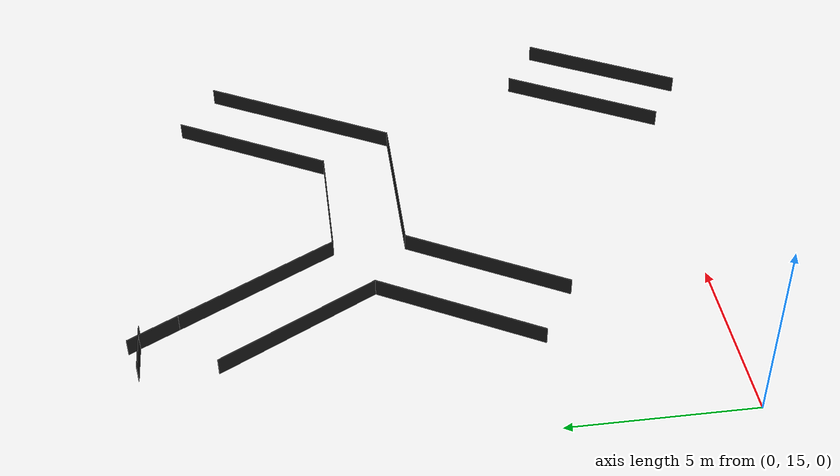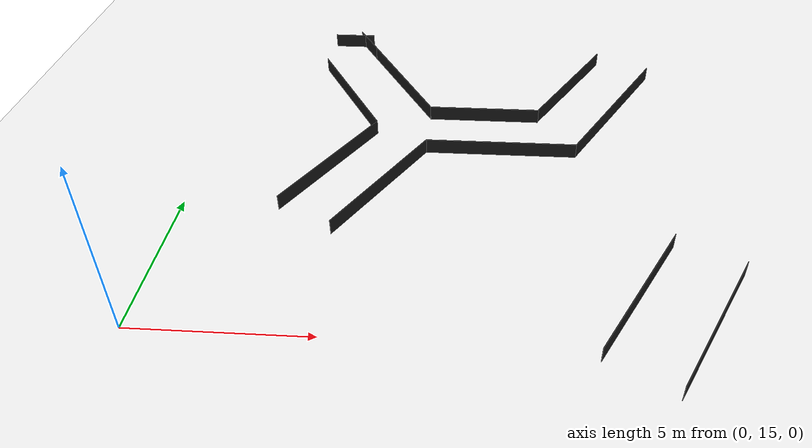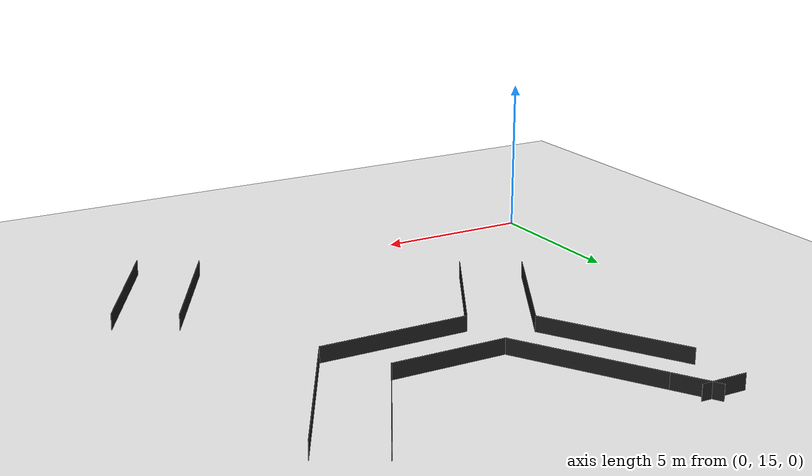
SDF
<sdf version="1.6">
 <world name="default">
  <model name="ground_plane">
   <static>1</static>
   <link name="link">
    <collision name="collision">
     <geometry><plane><normal>0 0 1</normal><size>100 100</size></plane></geometry>
     <surface><friction><ode><mu>100</mu><mu2>50</mu2></ode></friction></surface>
    </collision>
    <visual name="visual">
     <cast_shadows>0</cast_shadows>
     <geometry><plane><normal>0 0 1</normal><size>100 100</size></plane></geometry>
     <material>
      <script><uri>file://media/materials/scripts/gazebo.material</uri><name>Gazebo/White</name></script>
     </material>
    </visual>
   </link>
  </model>
  <model name="T_maze_0">
   <link name="link_clone">
    <inertial>
     <mass>1</mass>
     <inertia>
      <ixx>0.166667</ixx>
      <ixy>0</ixy>
      <ixz>0</ixz>
      <iyy>0.166667</iyy>
      <iyz>0</iyz>
      <izz>0.166667</izz>
     </inertia>
    </inertial>
    <pose>12.7749 3.79089 -0 5e-06 -0 2.0944</pose>
    <visual name="visual_2">
     <geometry><box><size>0.015 4.8453 0.5</size></box></geometry>
     <material>
      <script><name>Gazebo/FlatBlack</name><uri>file://media/materials/scripts/gazebo.material</uri></script>
      <shader type="pixel"><normal_map>__default__</normal_map></shader>
      <ambient>0.1 0.1 0.1 1</ambient>
      <diffuse>0.1 0.1 0.1 1</diffuse>
      <specular>0.01 0.01 0.01 1</specular>
      <emissive>0 0 0 1</emissive>
     </material>
     <pose>2 0 0 0 -0 0</pose>
    </visual>
    <visual name="visual">
     <geometry><box><size>0.015 4.8453 0.5</size></box></geometry>
     <material>
      <script><name>Gazebo/FlatBlack</name><uri>file://media/materials/scripts/gazebo.material</uri></script>
      <shader type="pixel"><normal_map>__default__</normal_map></shader>
      <ambient>0.1 0.1 0.1 1</ambient>
      <diffuse>0.1 0.1 0.1 1</diffuse>
      <specular>0.01 0.01 0.01 1</specular>
      <emissive>0 0 0 1</emissive>
     </material>
    </visual>
    <collision name="collision">
     <geometry><box><size>0.015 4.8453 0.5</size></box></geometry>
     <surface>
      <friction>
       <ode><mu>1</mu><mu2>1</mu2><fdir1>0 0 0</fdir1><slip1>0</slip1><slip2>0</slip2></ode>
       <torsional>
        <coefficient>1</coefficient>
        <patch_radius>0</patch_radius>
        <surface_radius>0</surface_radius>
        <use_patch_radius>1</use_patch_radius>
        <ode><slip>0</slip></ode>
       </torsional>
      </friction>
      <bounce><restitution_coefficient>0</restitution_coefficient><threshold>1e+06</threshold></bounce>
      <contact>
       <collide_without_contact>0</collide_without_contact>
       <collide_without_contact_bitmask>1</collide_without_contact_bitmask>
       <collide_bitmask>1</collide_bitmask>
       <ode>
        <soft_cfm>0</soft_cfm>
        <soft_erp>0.2</soft_erp>
        <kp>1e+13</kp>
        <kd>1</kd>
        <max_vel>0.01</max_vel>
        <min_depth>0</min_depth>
       </ode>
       <bullet>
        <split_impulse>1</split_impulse>
        <split_impulse_penetration_threshold>-0.01</split_impulse_penetration_threshold>
        <soft_cfm>0</soft_cfm>
        <soft_erp>0.2</soft_erp>
        <kp>1e+13</kp>
        <kd>1</kd>
       </bullet>
      </contact>
     </surface>
    </collision>
    <collision name="collision_1">
     <pose>2 0 0 0 -0 0</pose>
     <geometry><box><size>0.015 4.8453 0.5</size></box></geometry>
     <surface>
      <friction>
       <ode><mu>1</mu><mu2>1</mu2><fdir1>0 0 0</fdir1><slip1>0</slip1><slip2>0</slip2></ode>
       <torsional>
        <coefficient>1</coefficient>
        <patch_radius>0</patch_radius>
        <surface_radius>0</surface_radius>
        <use_patch_radius>1</use_patch_radius>
        <ode><slip>0</slip></ode>
       </torsional>
      </friction>
      <bounce><restitution_coefficient>0</restitution_coefficient><threshold>1e+06</threshold></bounce>
      <contact>
       <collide_without_contact>0</collide_without_contact>
       <collide_without_contact_bitmask>1</collide_without_contact_bitmask>
       <collide_bitmask>1</collide_bitmask>
       <ode>
        <soft_cfm>0</soft_cfm>
        <soft_erp>0.2</soft_erp>
        <kp>1e+13</kp>
        <kd>1</kd>
        <max_vel>0.01</max_vel>
        <min_depth>0</min_depth>
       </ode>
       <bullet>
        <split_impulse>1</split_impulse>
        <split_impulse_penetration_threshold>-0.01</split_impulse_penetration_threshold>
        <soft_cfm>0</soft_cfm>
        <soft_erp>0.2</soft_erp>
        <kp>1e+13</kp>
        <kd>1</kd>
       </bullet>
      </contact>
     </surface>
    </collision>
   </link>
   <link name="link_clone_0_clone_clone_1_clone">
    <inertial>
     <mass>1</mass>
     <inertia>
      <ixx>0.166667</ixx>
      <ixy>0</ixy>
      <ixz>0</ixz>
      <iyy>0.166667</iyy>
      <iyz>0</iyz>
      <izz>0.166667</izz>
     </inertia>
    </inertial>
    <pose>19.0569 0.16687 -6e-06 5e-06 -0 0</pose>
    <visual name="visual_2">
     <geometry><box><size>0.015 3.7053 0.5</size></box></geometry>
     <material>
      <script><name>Gazebo/FlatBlack</name><uri>file://media/materials/scripts/gazebo.material</uri></script>
      <shader type="pixel"><normal_map>__default__</normal_map></shader>
      <ambient>0.1 0.1 0.1 1</ambient>
      <diffuse>0.1 0.1 0.1 1</diffuse>
      <specular>0.01 0.01 0.01 1</specular>
      <emissive>0 0 0 1</emissive>
     </material>
     <pose>2 -0.57 0 0 -0 0</pose>
    </visual>
    <visual name="visual">
     <geometry><box><size>0.015 4.8453 0.5</size></box></geometry>
     <material>
      <script><name>Gazebo/FlatBlack</name><uri>file://media/materials/scripts/gazebo.material</uri></script>
      <shader type="pixel"><normal_map>__default__</normal_map></shader>
      <ambient>0.1 0.1 0.1 1</ambient>
      <diffuse>0.1 0.1 0.1 1</diffuse>
      <specular>0.01 0.01 0.01 1</specular>
      <emissive>0 0 0 1</emissive>
     </material>
    </visual>
    <collision name="collision_1">
     <pose>2 -0.57 0 0 -0 0</pose>
     <geometry><box><size>0.015 3.7053 0.5</size></box></geometry>
     <surface>
      <friction>
       <ode><mu>1</mu><mu2>1</mu2><fdir1>0 0 0</fdir1><slip1>0</slip1><slip2>0</slip2></ode>
       <torsional>
        <coefficient>1</coefficient>
        <patch_radius>0</patch_radius>
        <surface_radius>0</surface_radius>
        <use_patch_radius>1</use_patch_radius>
        <ode><slip>0</slip></ode>
       </torsional>
      </friction>
      <bounce><restitution_coefficient>0</restitution_coefficient><threshold>1e+06</threshold></bounce>
      <contact>
       <collide_without_contact>0</collide_without_contact>
       <collide_without_contact_bitmask>1</collide_without_contact_bitmask>
       <collide_bitmask>1</collide_bitmask>
       <ode>
        <soft_cfm>0</soft_cfm>
        <soft_erp>0.2</soft_erp>
        <kp>1e+13</kp>
        <kd>1</kd>
        <max_vel>0.01</max_vel>
        <min_depth>0</min_depth>
       </ode>
       <bullet>
        <split_impulse>1</split_impulse>
        <split_impulse_penetration_threshold>-0.01</split_impulse_penetration_threshold>
        <soft_cfm>0</soft_cfm>
        <soft_erp>0.2</soft_erp>
        <kp>1e+13</kp>
        <kd>1</kd>
       </bullet>
      </contact>
     </surface>
    </collision>
    <collision name="collision">
     <geometry><box><size>0.015 4.8453 0.5</size></box></geometry>
     <surface>
      <friction>
       <ode><mu>1</mu><mu2>1</mu2><fdir1>0 0 0</fdir1><slip1>0</slip1><slip2>0</slip2></ode>
       <torsional>
        <coefficient>1</coefficient>
        <patch_radius>0</patch_radius>
        <surface_radius>0</surface_radius>
        <use_patch_radius>1</use_patch_radius>
        <ode><slip>0</slip></ode>
       </torsional>
      </friction>
      <bounce><restitution_coefficient>0</restitution_coefficient><threshold>1e+06</threshold></bounce>
      <contact>
       <collide_without_contact>0</collide_without_contact>
       <collide_without_contact_bitmask>1</collide_without_contact_bitmask>
       <collide_bitmask>1</collide_bitmask>
       <ode>
        <soft_cfm>0</soft_cfm>
        <soft_erp>0.2</soft_erp>
        <kp>1e+13</kp>
        <kd>1</kd>
        <max_vel>0.01</max_vel>
        <min_depth>0</min_depth>
       </ode>
       <bullet>
        <split_impulse>1</split_impulse>
        <split_impulse_penetration_threshold>-0.01</split_impulse_penetration_threshold>
        <soft_cfm>0</soft_cfm>
        <soft_erp>0.2</soft_erp>
        <kp>1e+13</kp>
        <kd>1</kd>
       </bullet>
      </contact>
     </surface>
    </collision>
   </link>
   <link name="link_clone_0_clone_clone_clone">
    <inertial>
     <mass>1</mass>
     <inertia>
      <ixx>0.166667</ixx>
      <ixy>0</ixy>
      <ixz>0</ixz>
      <iyy>0.166667</iyy>
      <iyz>0</iyz>
      <izz>0.166667</izz>
     </inertia>
    </inertial>
    <pose>23.1519 -3.46238 -0 5e-06 -0 -2.0944</pose>
    <visual name="visual">
     <geometry><box><size>0.015 4.8453 0.5</size></box></geometry>
     <material>
      <script><name>Gazebo/FlatBlack</name><uri>file://media/materials/scripts/gazebo.material</uri></script>
      <shader type="pixel"><normal_map>__default__</normal_map></shader>
      <ambient>0.1 0.1 0.1 1</ambient>
      <diffuse>0.1 0.1 0.1 1</diffuse>
      <specular>0.01 0.01 0.01 1</specular>
      <emissive>0 0 0 1</emissive>
     </material>
    </visual>
    <visual name="visual_2">
     <geometry><box><size>0.015 4.8453 0.5</size></box></geometry>
     <material>
      <script><name>Gazebo/FlatBlack</name><uri>file://media/materials/scripts/gazebo.material</uri></script>
      <shader type="pixel"><normal_map>__default__</normal_map></shader>
      <ambient>0.1 0.1 0.1 1</ambient>
      <diffuse>0.1 0.1 0.1 1</diffuse>
      <specular>0.01 0.01 0.01 1</specular>
      <emissive>0 0 0 1</emissive>
     </material>
     <pose>2 0 0 0 -0 0</pose>
    </visual>
    <collision name="collision_1">
     <pose>2 0 0 0 -0 0</pose>
     <geometry><box><size>0.015 4.8453 0.5</size></box></geometry>
     <surface>
      <friction>
       <ode><mu>1</mu><mu2>1</mu2><fdir1>0 0 0</fdir1><slip1>0</slip1><slip2>0</slip2></ode>
       <torsional>
        <coefficient>1</coefficient>
        <patch_radius>0</patch_radius>
        <surface_radius>0</surface_radius>
        <use_patch_radius>1</use_patch_radius>
        <ode><slip>0</slip></ode>
       </torsional>
      </friction>
      <bounce><restitution_coefficient>0</restitution_coefficient><threshold>1e+06</threshold></bounce>
      <contact>
       <collide_without_contact>0</collide_without_contact>
       <collide_without_contact_bitmask>1</collide_without_contact_bitmask>
       <collide_bitmask>1</collide_bitmask>
       <ode>
        <soft_cfm>0</soft_cfm>
        <soft_erp>0.2</soft_erp>
        <kp>1e+13</kp>
        <kd>1</kd>
        <max_vel>0.01</max_vel>
        <min_depth>0</min_depth>
       </ode>
       <bullet>
        <split_impulse>1</split_impulse>
        <split_impulse_penetration_threshold>-0.01</split_impulse_penetration_threshold>
        <soft_cfm>0</soft_cfm>
        <soft_erp>0.2</soft_erp>
        <kp>1e+13</kp>
        <kd>1</kd>
       </bullet>
      </contact>
     </surface>
    </collision>
    <collision name="collision">
     <geometry><box><size>0.015 4.8453 0.5</size></box></geometry>
     <surface>
      <friction>
       <ode><mu>1</mu><mu2>1</mu2><fdir1>0 0 0</fdir1><slip1>0</slip1><slip2>0</slip2></ode>
       <torsional>
        <coefficient>1</coefficient>
        <patch_radius>0</patch_radius>
        <surface_radius>0</surface_radius>
        <use_patch_radius>1</use_patch_radius>
        <ode><slip>0</slip></ode>
       </torsional>
      </friction>
      <bounce><restitution_coefficient>0</restitution_coefficient><threshold>1e+06</threshold></bounce>
      <contact>
       <collide_without_contact>0</collide_without_contact>
       <collide_without_contact_bitmask>1</collide_without_contact_bitmask>
       <collide_bitmask>1</collide_bitmask>
       <ode>
        <soft_cfm>0</soft_cfm>
        <soft_erp>0.2</soft_erp>
        <kp>1e+13</kp>
        <kd>1</kd>
        <max_vel>0.01</max_vel>
        <min_depth>0</min_depth>
       </ode>
       <bullet>
        <split_impulse>1</split_impulse>
        <split_impulse_penetration_threshold>-0.01</split_impulse_penetration_threshold>
        <soft_cfm>0</soft_cfm>
        <soft_erp>0.2</soft_erp>
        <kp>1e+13</kp>
        <kd>1</kd>
       </bullet>
      </contact>
     </surface>
    </collision>
   </link>
   <link name="link_clone_clone_1">
    <inertial>
     <mass>1</mass>
     <inertia>
      <ixx>0.166667</ixx>
      <ixy>0</ixy>
      <ixz>0</ixz>
      <iyy>0.166667</iyy>
      <iyz>0</iyz>
      <izz>0.166667</izz>
     </inertia>
    </inertial>
    <pose>17.9632 -5.19404 0 5e-06 -0 2.0944</pose>
    <visual name="visual">
     <geometry><box><size>0.015 4.8453 0.5</size></box></geometry>
     <material>
      <script><name>Gazebo/FlatBlack</name><uri>file://media/materials/scripts/gazebo.material</uri></script>
      <shader type="pixel"><normal_map>__default__</normal_map></shader>
      <ambient>0.1 0.1 0.1 1</ambient>
      <diffuse>0.1 0.1 0.1 1</diffuse>
      <specular>0.01 0.01 0.01 1</specular>
      <emissive>0 0 0 1</emissive>
     </material>
    </visual>
    <visual name="visual_2">
     <geometry><box><size>0.015 4.8453 0.5</size></box></geometry>
     <material>
      <script><name>Gazebo/FlatBlack</name><uri>file://media/materials/scripts/gazebo.material</uri></script>
      <shader type="pixel"><normal_map>__default__</normal_map></shader>
      <ambient>0.1 0.1 0.1 1</ambient>
      <diffuse>0.1 0.1 0.1 1</diffuse>
      <specular>0.01 0.01 0.01 1</specular>
      <emissive>0 0 0 1</emissive>
     </material>
     <pose>2 0 0 0 -0 0</pose>
    </visual>
    <collision name="collision">
     <geometry><box><size>0.015 4.8453 0.5</size></box></geometry>
     <surface>
      <friction>
       <ode><mu>1</mu><mu2>1</mu2><fdir1>0 0 0</fdir1><slip1>0</slip1><slip2>0</slip2></ode>
       <torsional>
        <coefficient>1</coefficient>
        <patch_radius>0</patch_radius>
        <surface_radius>0</surface_radius>
        <use_patch_radius>1</use_patch_radius>
        <ode><slip>0</slip></ode>
       </torsional>
      </friction>
      <bounce><restitution_coefficient>0</restitution_coefficient><threshold>1e+06</threshold></bounce>
      <contact>
       <collide_without_contact>0</collide_without_contact>
       <collide_without_contact_bitmask>1</collide_without_contact_bitmask>
       <collide_bitmask>1</collide_bitmask>
       <ode>
        <soft_cfm>0</soft_cfm>
        <soft_erp>0.2</soft_erp>
        <kp>1e+13</kp>
        <kd>1</kd>
        <max_vel>0.01</max_vel>
        <min_depth>0</min_depth>
       </ode>
       <bullet>
        <split_impulse>1</split_impulse>
        <split_impulse_penetration_threshold>-0.01</split_impulse_penetration_threshold>
        <soft_cfm>0</soft_cfm>
        <soft_erp>0.2</soft_erp>
        <kp>1e+13</kp>
        <kd>1</kd>
       </bullet>
      </contact>
     </surface>
    </collision>
    <collision name="collision_1">
     <pose>2 0 0 0 -0 0</pose>
     <geometry><box><size>0.015 4.8453 0.5</size></box></geometry>
     <surface>
      <friction>
       <ode><mu>1</mu><mu2>1</mu2><fdir1>0 0 0</fdir1><slip1>0</slip1><slip2>0</slip2></ode>
       <torsional>
        <coefficient>1</coefficient>
        <patch_radius>0</patch_radius>
        <surface_radius>0</surface_radius>
        <use_patch_radius>1</use_patch_radius>
        <ode><slip>0</slip></ode>
       </torsional>
      </friction>
      <bounce><restitution_coefficient>0</restitution_coefficient><threshold>1e+06</threshold></bounce>
      <contact>
       <collide_without_contact>0</collide_without_contact>
       <collide_without_contact_bitmask>1</collide_without_contact_bitmask>
       <collide_bitmask>1</collide_bitmask>
       <ode>
        <soft_cfm>0</soft_cfm>
        <soft_erp>0.2</soft_erp>
        <kp>1e+13</kp>
        <kd>1</kd>
        <max_vel>0.01</max_vel>
        <min_depth>0</min_depth>
       </ode>
       <bullet>
        <split_impulse>1</split_impulse>
        <split_impulse_penetration_threshold>-0.01</split_impulse_penetration_threshold>
        <soft_cfm>0</soft_cfm>
        <soft_erp>0.2</soft_erp>
        <kp>1e+13</kp>
        <kd>1</kd>
       </bullet>
      </contact>
     </surface>
    </collision>
   </link>
   <link name="link_clone_clone_1_clone_clone_1">
    <inertial>
     <mass>1</mass>
     <inertia>
      <ixx>0.166667</ixx>
      <ixy>0</ixy>
      <ixz>0</ixz>
      <iyy>0.166667</iyy>
      <iyz>0</iyz>
      <izz>0.166667</izz>
     </inertia>
    </inertial>
    <pose>23.1539 2.6413 0 5e-06 -0 2.0944</pose>
    <visual name="visual">
     <geometry><box><size>0.015 4.8453 0.5</size></box></geometry>
     <material>
      <script><name>Gazebo/FlatBlack</name><uri>file://media/materials/scripts/gazebo.material</uri></script>
      <shader type="pixel"><normal_map>__default__</normal_map></shader>
      <ambient>0.1 0.1 0.1 1</ambient>
      <diffuse>0.1 0.1 0.1 1</diffuse>
      <specular>0.01 0.01 0.01 1</specular>
      <emissive>0 0 0 1</emissive>
     </material>
    </visual>
    <visual name="visual_2">
     <geometry><box><size>0.015 6 0.5</size></box></geometry>
     <material>
      <script><name>Gazebo/FlatBlack</name><uri>file://media/materials/scripts/gazebo.material</uri></script>
      <shader type="pixel"><normal_map>__default__</normal_map></shader>
      <ambient>0.1 0.1 0.1 1</ambient>
      <diffuse>0.1 0.1 0.1 1</diffuse>
      <specular>0.01 0.01 0.01 1</specular>
      <emissive>0 0 0 1</emissive>
     </material>
     <pose>2 0.58 0 0 -0 0</pose>
    </visual>
    <collision name="collision_1">
     <pose>2 0.58 0 0 -0 0</pose>
     <geometry><box><size>0.015 6 0.5</size></box></geometry>
     <surface>
      <friction>
       <ode><mu>1</mu><mu2>1</mu2><fdir1>0 0 0</fdir1><slip1>0</slip1><slip2>0</slip2></ode>
       <torsional>
        <coefficient>1</coefficient>
        <patch_radius>0</patch_radius>
        <surface_radius>0</surface_radius>
        <use_patch_radius>1</use_patch_radius>
        <ode><slip>0</slip></ode>
       </torsional>
      </friction>
      <bounce><restitution_coefficient>0</restitution_coefficient><threshold>1e+06</threshold></bounce>
      <contact>
       <collide_without_contact>0</collide_without_contact>
       <collide_without_contact_bitmask>1</collide_without_contact_bitmask>
       <collide_bitmask>1</collide_bitmask>
       <ode>
        <soft_cfm>0</soft_cfm>
        <soft_erp>0.2</soft_erp>
        <kp>1e+13</kp>
        <kd>1</kd>
        <max_vel>0.01</max_vel>
        <min_depth>0</min_depth>
       </ode>
       <bullet>
        <split_impulse>1</split_impulse>
        <split_impulse_penetration_threshold>-0.01</split_impulse_penetration_threshold>
        <soft_cfm>0</soft_cfm>
        <soft_erp>0.2</soft_erp>
        <kp>1e+13</kp>
        <kd>1</kd>
       </bullet>
      </contact>
     </surface>
    </collision>
    <collision name="collision">
     <geometry><box><size>0.015 4.8453 0.5</size></box></geometry>
     <surface>
      <friction>
       <ode><mu>1</mu><mu2>1</mu2><fdir1>0 0 0</fdir1><slip1>0</slip1><slip2>0</slip2></ode>
       <torsional>
        <coefficient>1</coefficient>
        <patch_radius>0</patch_radius>
        <surface_radius>0</surface_radius>
        <use_patch_radius>1</use_patch_radius>
        <ode><slip>0</slip></ode>
       </torsional>
      </friction>
      <bounce><restitution_coefficient>0</restitution_coefficient><threshold>1e+06</threshold></bounce>
      <contact>
       <collide_without_contact>0</collide_without_contact>
       <collide_without_contact_bitmask>1</collide_without_contact_bitmask>
       <collide_bitmask>1</collide_bitmask>
       <ode>
        <soft_cfm>0</soft_cfm>
        <soft_erp>0.2</soft_erp>
        <kp>1e+13</kp>
        <kd>1</kd>
        <max_vel>0.01</max_vel>
        <min_depth>0</min_depth>
       </ode>
       <bullet>
        <split_impulse>1</split_impulse>
        <split_impulse_penetration_threshold>-0.01</split_impulse_penetration_threshold>
        <soft_cfm>0</soft_cfm>
        <soft_erp>0.2</soft_erp>
        <kp>1e+13</kp>
        <kd>1</kd>
       </bullet>
      </contact>
     </surface>
    </collision>
   </link>
   <link name="link_clone_clone_clone_clone_0_clone_clone">
    <inertial>
     <mass>1</mass>
     <inertia>
      <ixx>0.166667</ixx>
      <ixy>0</ixy>
      <ixz>0</ixz>
      <iyy>0.166667</iyy>
      <iyz>0</iyz>
      <izz>0.166667</izz>
     </inertia>
    </inertial>
    <pose>25.8891 -5.04165 -9e-06 5e-06 -0 -2.0944</pose>
    <visual name="visual">
     <geometry><box><size>0.015 1.5 0.5</size></box></geometry>
     <material>
      <script><name>Gazebo/FlatBlack</name><uri>file://media/materials/scripts/gazebo.material</uri></script>
      <shader type="pixel"><normal_map>__default__</normal_map></shader>
      <ambient>0.1 0.1 0.1 1</ambient>
      <diffuse>0.1 0.1 0.1 1</diffuse>
      <specular>0.01 0.01 0.01 1</specular>
      <emissive>0 0 0 1</emissive>
     </material>
    </visual>
    <visual name="visual_2">
     <geometry><box><size>0.015 1.5 0.5</size></box></geometry>
     <material>
      <script><name>Gazebo/FlatBlack</name><uri>file://media/materials/scripts/gazebo.material</uri></script>
      <shader type="pixel"><normal_map>__default__</normal_map></shader>
      <ambient>0.1 0.1 0.1 1</ambient>
      <diffuse>0.1 0.1 0.1 1</diffuse>
      <specular>0.01 0.01 0.01 1</specular>
      <emissive>0 0 0 1</emissive>
     </material>
     <pose>0.3525 0.615 0 0 -0 2.0944</pose>
    </visual>
    <collision name="collision">
     <geometry><box><size>0.015 1.5 0.5</size></box></geometry>
     <surface>
      <friction>
       <ode><mu>1</mu><mu2>1</mu2><fdir1>0 0 0</fdir1><slip1>0</slip1><slip2>0</slip2></ode>
       <torsional>
        <coefficient>1</coefficient>
        <patch_radius>0</patch_radius>
        <surface_radius>0</surface_radius>
        <use_patch_radius>1</use_patch_radius>
        <ode><slip>0</slip></ode>
       </torsional>
      </friction>
      <bounce><restitution_coefficient>0</restitution_coefficient><threshold>1e+06</threshold></bounce>
      <contact>
       <collide_without_contact>0</collide_without_contact>
       <collide_without_contact_bitmask>1</collide_without_contact_bitmask>
       <collide_bitmask>1</collide_bitmask>
       <ode>
        <soft_cfm>0</soft_cfm>
        <soft_erp>0.2</soft_erp>
        <kp>1e+13</kp>
        <kd>1</kd>
        <max_vel>0.01</max_vel>
        <min_depth>0</min_depth>
       </ode>
       <bullet>
        <split_impulse>1</split_impulse>
        <split_impulse_penetration_threshold>-0.01</split_impulse_penetration_threshold>
        <soft_cfm>0</soft_cfm>
        <soft_erp>0.2</soft_erp>
        <kp>1e+13</kp>
        <kd>1</kd>
       </bullet>
      </contact>
     </surface>
    </collision>
    <collision name="collision_2">
     <pose>0.3525 0.615 0 0 -0 2.0944</pose>
     <geometry><box><size>0.015 1.5 0.5</size></box></geometry>
     <surface>
      <friction>
       <ode><mu>1</mu><mu2>1</mu2><fdir1>0 0 0</fdir1><slip1>0</slip1><slip2>0</slip2></ode>
       <torsional>
        <coefficient>1</coefficient>
        <patch_radius>0</patch_radius>
        <surface_radius>0</surface_radius>
        <use_patch_radius>1</use_patch_radius>
        <ode><slip>0</slip></ode>
       </torsional>
      </friction>
      <bounce><restitution_coefficient>0</restitution_coefficient><threshold>1e+06</threshold></bounce>
      <contact>
       <collide_without_contact>0</collide_without_contact>
       <collide_without_contact_bitmask>1</collide_without_contact_bitmask>
       <collide_bitmask>1</collide_bitmask>
       <ode>
        <soft_cfm>0</soft_cfm>
        <soft_erp>0.2</soft_erp>
        <kp>1e+13</kp>
        <kd>1</kd>
        <max_vel>0.01</max_vel>
        <min_depth>0</min_depth>
       </ode>
       <bullet>
        <split_impulse>1</split_impulse>
        <split_impulse_penetration_threshold>-0.01</split_impulse_penetration_threshold>
        <soft_cfm>0</soft_cfm>
        <soft_erp>0.2</soft_erp>
        <kp>1e+13</kp>
        <kd>1</kd>
       </bullet>
      </contact>
     </surface>
    </collision>
   </link>
   <static>1</static>
   <pose>9.33217 3.95788 0.249997 -3.14159 -3e-06 1.57079</pose>
  </model>
 </world>
</sdf>
